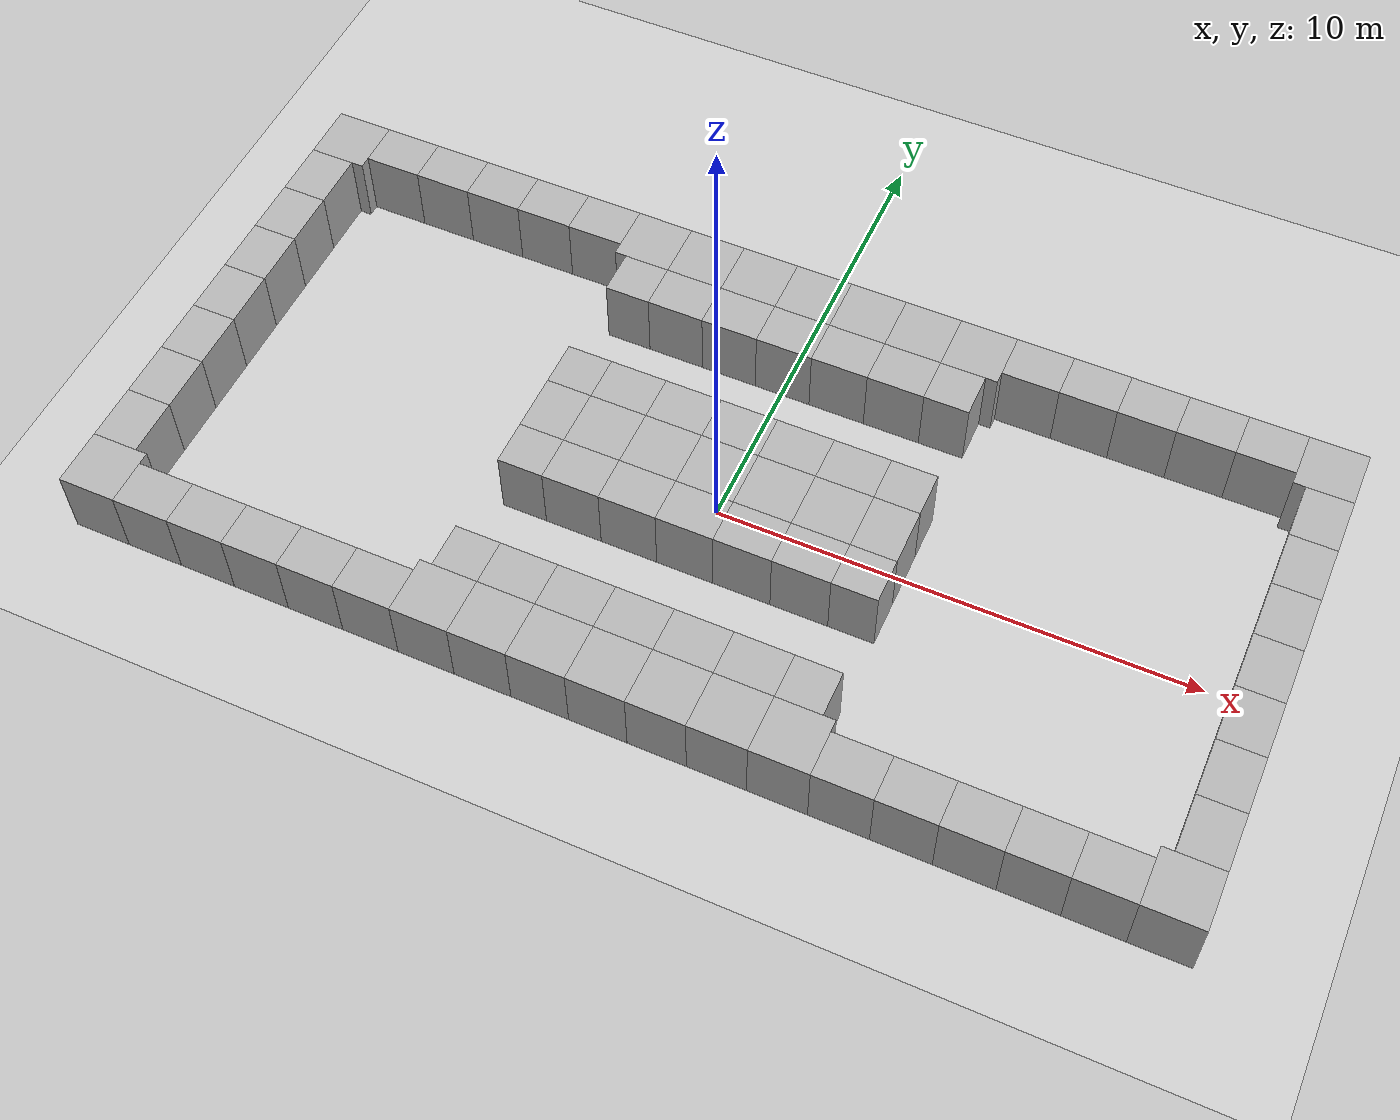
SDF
<?xml version="1.0"?>
<!-- Generated by remroc_world_generation/layouts.py (narrow_corridors). SPDX-License-Identifier: Apache-2.0 -->
<sdf version="1.6">
  <world name="narrow_corridors">
    <scene>
      <grid>false</grid>
    </scene>
    <physics name="1ms" type="ignored">
      <max_step_size>0.002</max_step_size>
      <real_time_factor>1.0</real_time_factor>
    </physics>
    <plugin filename="libignition-gazebo-physics-system.so" name="ignition::gazebo::systems::Physics"></plugin>
    <plugin filename="libignition-gazebo-sensors-system.so" name="ignition::gazebo::systems::Sensors">
      <render_engine>ogre</render_engine>
      <namespace>test</namespace>
    </plugin>
    <plugin filename="ignition-gazebo-imu-system" name="ignition::gazebo::systems::Imu"></plugin>
    <plugin filename="libignition-gazebo-user-commands-system.so" name="ignition::gazebo::systems::UserCommands"></plugin>
    <plugin filename="libignition-gazebo-scene-broadcaster-system.so" name="ignition::gazebo::systems::SceneBroadcaster"></plugin>

    <light type="directional" name="sun">
      <cast_shadows>true</cast_shadows>
      <pose>0 0 10 0 0 0</pose>
      <diffuse>0.8 0.8 0.8 1</diffuse>
      <specular>0.2 0.2 0.2 1</specular>
      <direction>-0.5 0.1 -0.9</direction>
    </light>

    <model name="ground_plane">
      <static>true</static>
      <link name="link">
        <collision name="collision"><geometry><plane><normal>0 0 1</normal><size>100 100</size></plane></geometry></collision>
        <visual name="visual"><geometry><plane><normal>0 0 1</normal><size>100 100</size></plane></geometry>
          <material><ambient>0.8 0.8 0.8 1</ambient><diffuse>0.8 0.8 0.8 1</diffuse></material></visual>
      </link>
    </model>

    <model name="narrow_corridors_walls">
      <static>true</static>
      <link name="wall_0">
        <pose>-10.8000 4.8000 0.75 0 0 0</pose>
        <collision name="collision"><geometry><box><size>1.2000 1.2000 1.5</size></box></geometry></collision>
        <visual name="visual"><geometry><box><size>1.2000 1.2000 1.5</size></box></geometry><material><ambient>0.6 0.6 0.6 1</ambient><diffuse>0.7 0.7 0.7 1</diffuse></material></visual>
      </link>
      <link name="wall_1">
        <pose>-9.6000 4.9250 0.75 0 0 0</pose>
        <collision name="collision"><geometry><box><size>1.2000 0.9500 1.5</size></box></geometry></collision>
        <visual name="visual"><geometry><box><size>1.2000 0.9500 1.5</size></box></geometry><material><ambient>0.6 0.6 0.6 1</ambient><diffuse>0.7 0.7 0.7 1</diffuse></material></visual>
      </link>
      <link name="wall_2">
        <pose>-8.4000 4.9250 0.75 0 0 0</pose>
        <collision name="collision"><geometry><box><size>1.2000 0.9500 1.5</size></box></geometry></collision>
        <visual name="visual"><geometry><box><size>1.2000 0.9500 1.5</size></box></geometry><material><ambient>0.6 0.6 0.6 1</ambient><diffuse>0.7 0.7 0.7 1</diffuse></material></visual>
      </link>
      <link name="wall_3">
        <pose>-7.2000 4.9250 0.75 0 0 0</pose>
        <collision name="collision"><geometry><box><size>1.2000 0.9500 1.5</size></box></geometry></collision>
        <visual name="visual"><geometry><box><size>1.2000 0.9500 1.5</size></box></geometry><material><ambient>0.6 0.6 0.6 1</ambient><diffuse>0.7 0.7 0.7 1</diffuse></material></visual>
      </link>
      <link name="wall_4">
        <pose>-6.0000 4.9250 0.75 0 0 0</pose>
        <collision name="collision"><geometry><box><size>1.2000 0.9500 1.5</size></box></geometry></collision>
        <visual name="visual"><geometry><box><size>1.2000 0.9500 1.5</size></box></geometry><material><ambient>0.6 0.6 0.6 1</ambient><diffuse>0.7 0.7 0.7 1</diffuse></material></visual>
      </link>
      <link name="wall_5">
        <pose>-4.8000 4.9250 0.75 0 0 0</pose>
        <collision name="collision"><geometry><box><size>1.2000 0.9500 1.5</size></box></geometry></collision>
        <visual name="visual"><geometry><box><size>1.2000 0.9500 1.5</size></box></geometry><material><ambient>0.6 0.6 0.6 1</ambient><diffuse>0.7 0.7 0.7 1</diffuse></material></visual>
      </link>
      <link name="wall_6">
        <pose>-3.6000 4.8000 0.75 0 0 0</pose>
        <collision name="collision"><geometry><box><size>1.2000 1.2000 1.5</size></box></geometry></collision>
        <visual name="visual"><geometry><box><size>1.2000 1.2000 1.5</size></box></geometry><material><ambient>0.6 0.6 0.6 1</ambient><diffuse>0.7 0.7 0.7 1</diffuse></material></visual>
      </link>
      <link name="wall_7">
        <pose>-2.4000 4.8000 0.75 0 0 0</pose>
        <collision name="collision"><geometry><box><size>1.2000 1.2000 1.5</size></box></geometry></collision>
        <visual name="visual"><geometry><box><size>1.2000 1.2000 1.5</size></box></geometry><material><ambient>0.6 0.6 0.6 1</ambient><diffuse>0.7 0.7 0.7 1</diffuse></material></visual>
      </link>
      <link name="wall_8">
        <pose>-1.2000 4.8000 0.75 0 0 0</pose>
        <collision name="collision"><geometry><box><size>1.2000 1.2000 1.5</size></box></geometry></collision>
        <visual name="visual"><geometry><box><size>1.2000 1.2000 1.5</size></box></geometry><material><ambient>0.6 0.6 0.6 1</ambient><diffuse>0.7 0.7 0.7 1</diffuse></material></visual>
      </link>
      <link name="wall_9">
        <pose>0.0000 4.8000 0.75 0 0 0</pose>
        <collision name="collision"><geometry><box><size>1.2000 1.2000 1.5</size></box></geometry></collision>
        <visual name="visual"><geometry><box><size>1.2000 1.2000 1.5</size></box></geometry><material><ambient>0.6 0.6 0.6 1</ambient><diffuse>0.7 0.7 0.7 1</diffuse></material></visual>
      </link>
      <link name="wall_10">
        <pose>1.2000 4.8000 0.75 0 0 0</pose>
        <collision name="collision"><geometry><box><size>1.2000 1.2000 1.5</size></box></geometry></collision>
        <visual name="visual"><geometry><box><size>1.2000 1.2000 1.5</size></box></geometry><material><ambient>0.6 0.6 0.6 1</ambient><diffuse>0.7 0.7 0.7 1</diffuse></material></visual>
      </link>
      <link name="wall_11">
        <pose>2.4000 4.8000 0.75 0 0 0</pose>
        <collision name="collision"><geometry><box><size>1.2000 1.2000 1.5</size></box></geometry></collision>
        <visual name="visual"><geometry><box><size>1.2000 1.2000 1.5</size></box></geometry><material><ambient>0.6 0.6 0.6 1</ambient><diffuse>0.7 0.7 0.7 1</diffuse></material></visual>
      </link>
      <link name="wall_12">
        <pose>3.6000 4.8000 0.75 0 0 0</pose>
        <collision name="collision"><geometry><box><size>1.2000 1.2000 1.5</size></box></geometry></collision>
        <visual name="visual"><geometry><box><size>1.2000 1.2000 1.5</size></box></geometry><material><ambient>0.6 0.6 0.6 1</ambient><diffuse>0.7 0.7 0.7 1</diffuse></material></visual>
      </link>
      <link name="wall_13">
        <pose>4.8000 4.9250 0.75 0 0 0</pose>
        <collision name="collision"><geometry><box><size>1.2000 0.9500 1.5</size></box></geometry></collision>
        <visual name="visual"><geometry><box><size>1.2000 0.9500 1.5</size></box></geometry><material><ambient>0.6 0.6 0.6 1</ambient><diffuse>0.7 0.7 0.7 1</diffuse></material></visual>
      </link>
      <link name="wall_14">
        <pose>6.0000 4.9250 0.75 0 0 0</pose>
        <collision name="collision"><geometry><box><size>1.2000 0.9500 1.5</size></box></geometry></collision>
        <visual name="visual"><geometry><box><size>1.2000 0.9500 1.5</size></box></geometry><material><ambient>0.6 0.6 0.6 1</ambient><diffuse>0.7 0.7 0.7 1</diffuse></material></visual>
      </link>
      <link name="wall_15">
        <pose>7.2000 4.9250 0.75 0 0 0</pose>
        <collision name="collision"><geometry><box><size>1.2000 0.9500 1.5</size></box></geometry></collision>
        <visual name="visual"><geometry><box><size>1.2000 0.9500 1.5</size></box></geometry><material><ambient>0.6 0.6 0.6 1</ambient><diffuse>0.7 0.7 0.7 1</diffuse></material></visual>
      </link>
      <link name="wall_16">
        <pose>8.4000 4.9250 0.75 0 0 0</pose>
        <collision name="collision"><geometry><box><size>1.2000 0.9500 1.5</size></box></geometry></collision>
        <visual name="visual"><geometry><box><size>1.2000 0.9500 1.5</size></box></geometry><material><ambient>0.6 0.6 0.6 1</ambient><diffuse>0.7 0.7 0.7 1</diffuse></material></visual>
      </link>
      <link name="wall_17">
        <pose>9.6000 4.9250 0.75 0 0 0</pose>
        <collision name="collision"><geometry><box><size>1.2000 0.9500 1.5</size></box></geometry></collision>
        <visual name="visual"><geometry><box><size>1.2000 0.9500 1.5</size></box></geometry><material><ambient>0.6 0.6 0.6 1</ambient><diffuse>0.7 0.7 0.7 1</diffuse></material></visual>
      </link>
      <link name="wall_18">
        <pose>10.8000 4.8000 0.75 0 0 0</pose>
        <collision name="collision"><geometry><box><size>1.2000 1.2000 1.5</size></box></geometry></collision>
        <visual name="visual"><geometry><box><size>1.2000 1.2000 1.5</size></box></geometry><material><ambient>0.6 0.6 0.6 1</ambient><diffuse>0.7 0.7 0.7 1</diffuse></material></visual>
      </link>
      <link name="wall_19">
        <pose>-10.9250 3.6000 0.75 0 0 0</pose>
        <collision name="collision"><geometry><box><size>0.9500 1.2000 1.5</size></box></geometry></collision>
        <visual name="visual"><geometry><box><size>0.9500 1.2000 1.5</size></box></geometry><material><ambient>0.6 0.6 0.6 1</ambient><diffuse>0.7 0.7 0.7 1</diffuse></material></visual>
      </link>
      <link name="wall_20">
        <pose>-3.4750 3.7250 0.75 0 0 0</pose>
        <collision name="collision"><geometry><box><size>0.9500 0.9500 1.5</size></box></geometry></collision>
        <visual name="visual"><geometry><box><size>0.9500 0.9500 1.5</size></box></geometry><material><ambient>0.6 0.6 0.6 1</ambient><diffuse>0.7 0.7 0.7 1</diffuse></material></visual>
      </link>
      <link name="wall_21">
        <pose>-2.4000 3.7250 0.75 0 0 0</pose>
        <collision name="collision"><geometry><box><size>1.2000 0.9500 1.5</size></box></geometry></collision>
        <visual name="visual"><geometry><box><size>1.2000 0.9500 1.5</size></box></geometry><material><ambient>0.6 0.6 0.6 1</ambient><diffuse>0.7 0.7 0.7 1</diffuse></material></visual>
      </link>
      <link name="wall_22">
        <pose>-1.2000 3.7250 0.75 0 0 0</pose>
        <collision name="collision"><geometry><box><size>1.2000 0.9500 1.5</size></box></geometry></collision>
        <visual name="visual"><geometry><box><size>1.2000 0.9500 1.5</size></box></geometry><material><ambient>0.6 0.6 0.6 1</ambient><diffuse>0.7 0.7 0.7 1</diffuse></material></visual>
      </link>
      <link name="wall_23">
        <pose>0.0000 3.7250 0.75 0 0 0</pose>
        <collision name="collision"><geometry><box><size>1.2000 0.9500 1.5</size></box></geometry></collision>
        <visual name="visual"><geometry><box><size>1.2000 0.9500 1.5</size></box></geometry><material><ambient>0.6 0.6 0.6 1</ambient><diffuse>0.7 0.7 0.7 1</diffuse></material></visual>
      </link>
      <link name="wall_24">
        <pose>1.2000 3.7250 0.75 0 0 0</pose>
        <collision name="collision"><geometry><box><size>1.2000 0.9500 1.5</size></box></geometry></collision>
        <visual name="visual"><geometry><box><size>1.2000 0.9500 1.5</size></box></geometry><material><ambient>0.6 0.6 0.6 1</ambient><diffuse>0.7 0.7 0.7 1</diffuse></material></visual>
      </link>
      <link name="wall_25">
        <pose>2.4000 3.7250 0.75 0 0 0</pose>
        <collision name="collision"><geometry><box><size>1.2000 0.9500 1.5</size></box></geometry></collision>
        <visual name="visual"><geometry><box><size>1.2000 0.9500 1.5</size></box></geometry><material><ambient>0.6 0.6 0.6 1</ambient><diffuse>0.7 0.7 0.7 1</diffuse></material></visual>
      </link>
      <link name="wall_26">
        <pose>3.4750 3.7250 0.75 0 0 0</pose>
        <collision name="collision"><geometry><box><size>0.9500 0.9500 1.5</size></box></geometry></collision>
        <visual name="visual"><geometry><box><size>0.9500 0.9500 1.5</size></box></geometry><material><ambient>0.6 0.6 0.6 1</ambient><diffuse>0.7 0.7 0.7 1</diffuse></material></visual>
      </link>
      <link name="wall_27">
        <pose>10.9250 3.6000 0.75 0 0 0</pose>
        <collision name="collision"><geometry><box><size>0.9500 1.2000 1.5</size></box></geometry></collision>
        <visual name="visual"><geometry><box><size>0.9500 1.2000 1.5</size></box></geometry><material><ambient>0.6 0.6 0.6 1</ambient><diffuse>0.7 0.7 0.7 1</diffuse></material></visual>
      </link>
      <link name="wall_28">
        <pose>-10.9250 2.4000 0.75 0 0 0</pose>
        <collision name="collision"><geometry><box><size>0.9500 1.2000 1.5</size></box></geometry></collision>
        <visual name="visual"><geometry><box><size>0.9500 1.2000 1.5</size></box></geometry><material><ambient>0.6 0.6 0.6 1</ambient><diffuse>0.7 0.7 0.7 1</diffuse></material></visual>
      </link>
      <link name="wall_29">
        <pose>10.9250 2.4000 0.75 0 0 0</pose>
        <collision name="collision"><geometry><box><size>0.9500 1.2000 1.5</size></box></geometry></collision>
        <visual name="visual"><geometry><box><size>0.9500 1.2000 1.5</size></box></geometry><material><ambient>0.6 0.6 0.6 1</ambient><diffuse>0.7 0.7 0.7 1</diffuse></material></visual>
      </link>
      <link name="wall_30">
        <pose>-10.9250 1.2000 0.75 0 0 0</pose>
        <collision name="collision"><geometry><box><size>0.9500 1.2000 1.5</size></box></geometry></collision>
        <visual name="visual"><geometry><box><size>0.9500 1.2000 1.5</size></box></geometry><material><ambient>0.6 0.6 0.6 1</ambient><diffuse>0.7 0.7 0.7 1</diffuse></material></visual>
      </link>
      <link name="wall_31">
        <pose>-3.4750 1.0750 0.75 0 0 0</pose>
        <collision name="collision"><geometry><box><size>0.9500 0.9500 1.5</size></box></geometry></collision>
        <visual name="visual"><geometry><box><size>0.9500 0.9500 1.5</size></box></geometry><material><ambient>0.6 0.6 0.6 1</ambient><diffuse>0.7 0.7 0.7 1</diffuse></material></visual>
      </link>
      <link name="wall_32">
        <pose>-2.4000 1.0750 0.75 0 0 0</pose>
        <collision name="collision"><geometry><box><size>1.2000 0.9500 1.5</size></box></geometry></collision>
        <visual name="visual"><geometry><box><size>1.2000 0.9500 1.5</size></box></geometry><material><ambient>0.6 0.6 0.6 1</ambient><diffuse>0.7 0.7 0.7 1</diffuse></material></visual>
      </link>
      <link name="wall_33">
        <pose>-1.2000 1.0750 0.75 0 0 0</pose>
        <collision name="collision"><geometry><box><size>1.2000 0.9500 1.5</size></box></geometry></collision>
        <visual name="visual"><geometry><box><size>1.2000 0.9500 1.5</size></box></geometry><material><ambient>0.6 0.6 0.6 1</ambient><diffuse>0.7 0.7 0.7 1</diffuse></material></visual>
      </link>
      <link name="wall_34">
        <pose>0.0000 1.0750 0.75 0 0 0</pose>
        <collision name="collision"><geometry><box><size>1.2000 0.9500 1.5</size></box></geometry></collision>
        <visual name="visual"><geometry><box><size>1.2000 0.9500 1.5</size></box></geometry><material><ambient>0.6 0.6 0.6 1</ambient><diffuse>0.7 0.7 0.7 1</diffuse></material></visual>
      </link>
      <link name="wall_35">
        <pose>1.2000 1.0750 0.75 0 0 0</pose>
        <collision name="collision"><geometry><box><size>1.2000 0.9500 1.5</size></box></geometry></collision>
        <visual name="visual"><geometry><box><size>1.2000 0.9500 1.5</size></box></geometry><material><ambient>0.6 0.6 0.6 1</ambient><diffuse>0.7 0.7 0.7 1</diffuse></material></visual>
      </link>
      <link name="wall_36">
        <pose>2.4000 1.0750 0.75 0 0 0</pose>
        <collision name="collision"><geometry><box><size>1.2000 0.9500 1.5</size></box></geometry></collision>
        <visual name="visual"><geometry><box><size>1.2000 0.9500 1.5</size></box></geometry><material><ambient>0.6 0.6 0.6 1</ambient><diffuse>0.7 0.7 0.7 1</diffuse></material></visual>
      </link>
      <link name="wall_37">
        <pose>3.4750 1.0750 0.75 0 0 0</pose>
        <collision name="collision"><geometry><box><size>0.9500 0.9500 1.5</size></box></geometry></collision>
        <visual name="visual"><geometry><box><size>0.9500 0.9500 1.5</size></box></geometry><material><ambient>0.6 0.6 0.6 1</ambient><diffuse>0.7 0.7 0.7 1</diffuse></material></visual>
      </link>
      <link name="wall_38">
        <pose>10.9250 1.2000 0.75 0 0 0</pose>
        <collision name="collision"><geometry><box><size>0.9500 1.2000 1.5</size></box></geometry></collision>
        <visual name="visual"><geometry><box><size>0.9500 1.2000 1.5</size></box></geometry><material><ambient>0.6 0.6 0.6 1</ambient><diffuse>0.7 0.7 0.7 1</diffuse></material></visual>
      </link>
      <link name="wall_39">
        <pose>-10.9250 0.0000 0.75 0 0 0</pose>
        <collision name="collision"><geometry><box><size>0.9500 1.2000 1.5</size></box></geometry></collision>
        <visual name="visual"><geometry><box><size>0.9500 1.2000 1.5</size></box></geometry><material><ambient>0.6 0.6 0.6 1</ambient><diffuse>0.7 0.7 0.7 1</diffuse></material></visual>
      </link>
      <link name="wall_40">
        <pose>-3.4750 0.0000 0.75 0 0 0</pose>
        <collision name="collision"><geometry><box><size>0.9500 1.2000 1.5</size></box></geometry></collision>
        <visual name="visual"><geometry><box><size>0.9500 1.2000 1.5</size></box></geometry><material><ambient>0.6 0.6 0.6 1</ambient><diffuse>0.7 0.7 0.7 1</diffuse></material></visual>
      </link>
      <link name="wall_41">
        <pose>-2.4000 0.0000 0.75 0 0 0</pose>
        <collision name="collision"><geometry><box><size>1.2000 1.2000 1.5</size></box></geometry></collision>
        <visual name="visual"><geometry><box><size>1.2000 1.2000 1.5</size></box></geometry><material><ambient>0.6 0.6 0.6 1</ambient><diffuse>0.7 0.7 0.7 1</diffuse></material></visual>
      </link>
      <link name="wall_42">
        <pose>-1.2000 0.0000 0.75 0 0 0</pose>
        <collision name="collision"><geometry><box><size>1.2000 1.2000 1.5</size></box></geometry></collision>
        <visual name="visual"><geometry><box><size>1.2000 1.2000 1.5</size></box></geometry><material><ambient>0.6 0.6 0.6 1</ambient><diffuse>0.7 0.7 0.7 1</diffuse></material></visual>
      </link>
      <link name="wall_43">
        <pose>0.0000 0.0000 0.75 0 0 0</pose>
        <collision name="collision"><geometry><box><size>1.2000 1.2000 1.5</size></box></geometry></collision>
        <visual name="visual"><geometry><box><size>1.2000 1.2000 1.5</size></box></geometry><material><ambient>0.6 0.6 0.6 1</ambient><diffuse>0.7 0.7 0.7 1</diffuse></material></visual>
      </link>
      <link name="wall_44">
        <pose>1.2000 0.0000 0.75 0 0 0</pose>
        <collision name="collision"><geometry><box><size>1.2000 1.2000 1.5</size></box></geometry></collision>
        <visual name="visual"><geometry><box><size>1.2000 1.2000 1.5</size></box></geometry><material><ambient>0.6 0.6 0.6 1</ambient><diffuse>0.7 0.7 0.7 1</diffuse></material></visual>
      </link>
      <link name="wall_45">
        <pose>2.4000 0.0000 0.75 0 0 0</pose>
        <collision name="collision"><geometry><box><size>1.2000 1.2000 1.5</size></box></geometry></collision>
        <visual name="visual"><geometry><box><size>1.2000 1.2000 1.5</size></box></geometry><material><ambient>0.6 0.6 0.6 1</ambient><diffuse>0.7 0.7 0.7 1</diffuse></material></visual>
      </link>
      <link name="wall_46">
        <pose>3.4750 0.0000 0.75 0 0 0</pose>
        <collision name="collision"><geometry><box><size>0.9500 1.2000 1.5</size></box></geometry></collision>
        <visual name="visual"><geometry><box><size>0.9500 1.2000 1.5</size></box></geometry><material><ambient>0.6 0.6 0.6 1</ambient><diffuse>0.7 0.7 0.7 1</diffuse></material></visual>
      </link>
      <link name="wall_47">
        <pose>10.9250 0.0000 0.75 0 0 0</pose>
        <collision name="collision"><geometry><box><size>0.9500 1.2000 1.5</size></box></geometry></collision>
        <visual name="visual"><geometry><box><size>0.9500 1.2000 1.5</size></box></geometry><material><ambient>0.6 0.6 0.6 1</ambient><diffuse>0.7 0.7 0.7 1</diffuse></material></visual>
      </link>
      <link name="wall_48">
        <pose>-10.9250 -1.2000 0.75 0 0 0</pose>
        <collision name="collision"><geometry><box><size>0.9500 1.2000 1.5</size></box></geometry></collision>
        <visual name="visual"><geometry><box><size>0.9500 1.2000 1.5</size></box></geometry><material><ambient>0.6 0.6 0.6 1</ambient><diffuse>0.7 0.7 0.7 1</diffuse></material></visual>
      </link>
      <link name="wall_49">
        <pose>-3.4750 -1.0750 0.75 0 0 0</pose>
        <collision name="collision"><geometry><box><size>0.9500 0.9500 1.5</size></box></geometry></collision>
        <visual name="visual"><geometry><box><size>0.9500 0.9500 1.5</size></box></geometry><material><ambient>0.6 0.6 0.6 1</ambient><diffuse>0.7 0.7 0.7 1</diffuse></material></visual>
      </link>
      <link name="wall_50">
        <pose>-2.4000 -1.0750 0.75 0 0 0</pose>
        <collision name="collision"><geometry><box><size>1.2000 0.9500 1.5</size></box></geometry></collision>
        <visual name="visual"><geometry><box><size>1.2000 0.9500 1.5</size></box></geometry><material><ambient>0.6 0.6 0.6 1</ambient><diffuse>0.7 0.7 0.7 1</diffuse></material></visual>
      </link>
      <link name="wall_51">
        <pose>-1.2000 -1.0750 0.75 0 0 0</pose>
        <collision name="collision"><geometry><box><size>1.2000 0.9500 1.5</size></box></geometry></collision>
        <visual name="visual"><geometry><box><size>1.2000 0.9500 1.5</size></box></geometry><material><ambient>0.6 0.6 0.6 1</ambient><diffuse>0.7 0.7 0.7 1</diffuse></material></visual>
      </link>
      <link name="wall_52">
        <pose>0.0000 -1.0750 0.75 0 0 0</pose>
        <collision name="collision"><geometry><box><size>1.2000 0.9500 1.5</size></box></geometry></collision>
        <visual name="visual"><geometry><box><size>1.2000 0.9500 1.5</size></box></geometry><material><ambient>0.6 0.6 0.6 1</ambient><diffuse>0.7 0.7 0.7 1</diffuse></material></visual>
      </link>
      <link name="wall_53">
        <pose>1.2000 -1.0750 0.75 0 0 0</pose>
        <collision name="collision"><geometry><box><size>1.2000 0.9500 1.5</size></box></geometry></collision>
        <visual name="visual"><geometry><box><size>1.2000 0.9500 1.5</size></box></geometry><material><ambient>0.6 0.6 0.6 1</ambient><diffuse>0.7 0.7 0.7 1</diffuse></material></visual>
      </link>
      <link name="wall_54">
        <pose>2.4000 -1.0750 0.75 0 0 0</pose>
        <collision name="collision"><geometry><box><size>1.2000 0.9500 1.5</size></box></geometry></collision>
        <visual name="visual"><geometry><box><size>1.2000 0.9500 1.5</size></box></geometry><material><ambient>0.6 0.6 0.6 1</ambient><diffuse>0.7 0.7 0.7 1</diffuse></material></visual>
      </link>
      <link name="wall_55">
        <pose>3.4750 -1.0750 0.75 0 0 0</pose>
        <collision name="collision"><geometry><box><size>0.9500 0.9500 1.5</size></box></geometry></collision>
        <visual name="visual"><geometry><box><size>0.9500 0.9500 1.5</size></box></geometry><material><ambient>0.6 0.6 0.6 1</ambient><diffuse>0.7 0.7 0.7 1</diffuse></material></visual>
      </link>
      <link name="wall_56">
        <pose>10.9250 -1.2000 0.75 0 0 0</pose>
        <collision name="collision"><geometry><box><size>0.9500 1.2000 1.5</size></box></geometry></collision>
        <visual name="visual"><geometry><box><size>0.9500 1.2000 1.5</size></box></geometry><material><ambient>0.6 0.6 0.6 1</ambient><diffuse>0.7 0.7 0.7 1</diffuse></material></visual>
      </link>
      <link name="wall_57">
        <pose>-10.9250 -2.4000 0.75 0 0 0</pose>
        <collision name="collision"><geometry><box><size>0.9500 1.2000 1.5</size></box></geometry></collision>
        <visual name="visual"><geometry><box><size>0.9500 1.2000 1.5</size></box></geometry><material><ambient>0.6 0.6 0.6 1</ambient><diffuse>0.7 0.7 0.7 1</diffuse></material></visual>
      </link>
      <link name="wall_58">
        <pose>10.9250 -2.4000 0.75 0 0 0</pose>
        <collision name="collision"><geometry><box><size>0.9500 1.2000 1.5</size></box></geometry></collision>
        <visual name="visual"><geometry><box><size>0.9500 1.2000 1.5</size></box></geometry><material><ambient>0.6 0.6 0.6 1</ambient><diffuse>0.7 0.7 0.7 1</diffuse></material></visual>
      </link>
      <link name="wall_59">
        <pose>-10.9250 -3.6000 0.75 0 0 0</pose>
        <collision name="collision"><geometry><box><size>0.9500 1.2000 1.5</size></box></geometry></collision>
        <visual name="visual"><geometry><box><size>0.9500 1.2000 1.5</size></box></geometry><material><ambient>0.6 0.6 0.6 1</ambient><diffuse>0.7 0.7 0.7 1</diffuse></material></visual>
      </link>
      <link name="wall_60">
        <pose>-3.4750 -3.7250 0.75 0 0 0</pose>
        <collision name="collision"><geometry><box><size>0.9500 0.9500 1.5</size></box></geometry></collision>
        <visual name="visual"><geometry><box><size>0.9500 0.9500 1.5</size></box></geometry><material><ambient>0.6 0.6 0.6 1</ambient><diffuse>0.7 0.7 0.7 1</diffuse></material></visual>
      </link>
      <link name="wall_61">
        <pose>-2.4000 -3.7250 0.75 0 0 0</pose>
        <collision name="collision"><geometry><box><size>1.2000 0.9500 1.5</size></box></geometry></collision>
        <visual name="visual"><geometry><box><size>1.2000 0.9500 1.5</size></box></geometry><material><ambient>0.6 0.6 0.6 1</ambient><diffuse>0.7 0.7 0.7 1</diffuse></material></visual>
      </link>
      <link name="wall_62">
        <pose>-1.2000 -3.7250 0.75 0 0 0</pose>
        <collision name="collision"><geometry><box><size>1.2000 0.9500 1.5</size></box></geometry></collision>
        <visual name="visual"><geometry><box><size>1.2000 0.9500 1.5</size></box></geometry><material><ambient>0.6 0.6 0.6 1</ambient><diffuse>0.7 0.7 0.7 1</diffuse></material></visual>
      </link>
      <link name="wall_63">
        <pose>0.0000 -3.7250 0.75 0 0 0</pose>
        <collision name="collision"><geometry><box><size>1.2000 0.9500 1.5</size></box></geometry></collision>
        <visual name="visual"><geometry><box><size>1.2000 0.9500 1.5</size></box></geometry><material><ambient>0.6 0.6 0.6 1</ambient><diffuse>0.7 0.7 0.7 1</diffuse></material></visual>
      </link>
      <link name="wall_64">
        <pose>1.2000 -3.7250 0.75 0 0 0</pose>
        <collision name="collision"><geometry><box><size>1.2000 0.9500 1.5</size></box></geometry></collision>
        <visual name="visual"><geometry><box><size>1.2000 0.9500 1.5</size></box></geometry><material><ambient>0.6 0.6 0.6 1</ambient><diffuse>0.7 0.7 0.7 1</diffuse></material></visual>
      </link>
      <link name="wall_65">
        <pose>2.4000 -3.7250 0.75 0 0 0</pose>
        <collision name="collision"><geometry><box><size>1.2000 0.9500 1.5</size></box></geometry></collision>
        <visual name="visual"><geometry><box><size>1.2000 0.9500 1.5</size></box></geometry><material><ambient>0.6 0.6 0.6 1</ambient><diffuse>0.7 0.7 0.7 1</diffuse></material></visual>
      </link>
      <link name="wall_66">
        <pose>3.4750 -3.7250 0.75 0 0 0</pose>
        <collision name="collision"><geometry><box><size>0.9500 0.9500 1.5</size></box></geometry></collision>
        <visual name="visual"><geometry><box><size>0.9500 0.9500 1.5</size></box></geometry><material><ambient>0.6 0.6 0.6 1</ambient><diffuse>0.7 0.7 0.7 1</diffuse></material></visual>
      </link>
      <link name="wall_67">
        <pose>10.9250 -3.6000 0.75 0 0 0</pose>
        <collision name="collision"><geometry><box><size>0.9500 1.2000 1.5</size></box></geometry></collision>
        <visual name="visual"><geometry><box><size>0.9500 1.2000 1.5</size></box></geometry><material><ambient>0.6 0.6 0.6 1</ambient><diffuse>0.7 0.7 0.7 1</diffuse></material></visual>
      </link>
      <link name="wall_68">
        <pose>-10.8000 -4.8000 0.75 0 0 0</pose>
        <collision name="collision"><geometry><box><size>1.2000 1.2000 1.5</size></box></geometry></collision>
        <visual name="visual"><geometry><box><size>1.2000 1.2000 1.5</size></box></geometry><material><ambient>0.6 0.6 0.6 1</ambient><diffuse>0.7 0.7 0.7 1</diffuse></material></visual>
      </link>
      <link name="wall_69">
        <pose>-9.6000 -4.9250 0.75 0 0 0</pose>
        <collision name="collision"><geometry><box><size>1.2000 0.9500 1.5</size></box></geometry></collision>
        <visual name="visual"><geometry><box><size>1.2000 0.9500 1.5</size></box></geometry><material><ambient>0.6 0.6 0.6 1</ambient><diffuse>0.7 0.7 0.7 1</diffuse></material></visual>
      </link>
      <link name="wall_70">
        <pose>-8.4000 -4.9250 0.75 0 0 0</pose>
        <collision name="collision"><geometry><box><size>1.2000 0.9500 1.5</size></box></geometry></collision>
        <visual name="visual"><geometry><box><size>1.2000 0.9500 1.5</size></box></geometry><material><ambient>0.6 0.6 0.6 1</ambient><diffuse>0.7 0.7 0.7 1</diffuse></material></visual>
      </link>
      <link name="wall_71">
        <pose>-7.2000 -4.9250 0.75 0 0 0</pose>
        <collision name="collision"><geometry><box><size>1.2000 0.9500 1.5</size></box></geometry></collision>
        <visual name="visual"><geometry><box><size>1.2000 0.9500 1.5</size></box></geometry><material><ambient>0.6 0.6 0.6 1</ambient><diffuse>0.7 0.7 0.7 1</diffuse></material></visual>
      </link>
      <link name="wall_72">
        <pose>-6.0000 -4.9250 0.75 0 0 0</pose>
        <collision name="collision"><geometry><box><size>1.2000 0.9500 1.5</size></box></geometry></collision>
        <visual name="visual"><geometry><box><size>1.2000 0.9500 1.5</size></box></geometry><material><ambient>0.6 0.6 0.6 1</ambient><diffuse>0.7 0.7 0.7 1</diffuse></material></visual>
      </link>
      <link name="wall_73">
        <pose>-4.8000 -4.9250 0.75 0 0 0</pose>
        <collision name="collision"><geometry><box><size>1.2000 0.9500 1.5</size></box></geometry></collision>
        <visual name="visual"><geometry><box><size>1.2000 0.9500 1.5</size></box></geometry><material><ambient>0.6 0.6 0.6 1</ambient><diffuse>0.7 0.7 0.7 1</diffuse></material></visual>
      </link>
      <link name="wall_74">
        <pose>-3.6000 -4.8000 0.75 0 0 0</pose>
        <collision name="collision"><geometry><box><size>1.2000 1.2000 1.5</size></box></geometry></collision>
        <visual name="visual"><geometry><box><size>1.2000 1.2000 1.5</size></box></geometry><material><ambient>0.6 0.6 0.6 1</ambient><diffuse>0.7 0.7 0.7 1</diffuse></material></visual>
      </link>
      <link name="wall_75">
        <pose>-2.4000 -4.8000 0.75 0 0 0</pose>
        <collision name="collision"><geometry><box><size>1.2000 1.2000 1.5</size></box></geometry></collision>
        <visual name="visual"><geometry><box><size>1.2000 1.2000 1.5</size></box></geometry><material><ambient>0.6 0.6 0.6 1</ambient><diffuse>0.7 0.7 0.7 1</diffuse></material></visual>
      </link>
      <link name="wall_76">
        <pose>-1.2000 -4.8000 0.75 0 0 0</pose>
        <collision name="collision"><geometry><box><size>1.2000 1.2000 1.5</size></box></geometry></collision>
        <visual name="visual"><geometry><box><size>1.2000 1.2000 1.5</size></box></geometry><material><ambient>0.6 0.6 0.6 1</ambient><diffuse>0.7 0.7 0.7 1</diffuse></material></visual>
      </link>
      <link name="wall_77">
        <pose>0.0000 -4.8000 0.75 0 0 0</pose>
        <collision name="collision"><geometry><box><size>1.2000 1.2000 1.5</size></box></geometry></collision>
        <visual name="visual"><geometry><box><size>1.2000 1.2000 1.5</size></box></geometry><material><ambient>0.6 0.6 0.6 1</ambient><diffuse>0.7 0.7 0.7 1</diffuse></material></visual>
      </link>
      <link name="wall_78">
        <pose>1.2000 -4.8000 0.75 0 0 0</pose>
        <collision name="collision"><geometry><box><size>1.2000 1.2000 1.5</size></box></geometry></collision>
        <visual name="visual"><geometry><box><size>1.2000 1.2000 1.5</size></box></geometry><material><ambient>0.6 0.6 0.6 1</ambient><diffuse>0.7 0.7 0.7 1</diffuse></material></visual>
      </link>
      <link name="wall_79">
        <pose>2.4000 -4.8000 0.75 0 0 0</pose>
        <collision name="collision"><geometry><box><size>1.2000 1.2000 1.5</size></box></geometry></collision>
        <visual name="visual"><geometry><box><size>1.2000 1.2000 1.5</size></box></geometry><material><ambient>0.6 0.6 0.6 1</ambient><diffuse>0.7 0.7 0.7 1</diffuse></material></visual>
      </link>
      <link name="wall_80">
        <pose>3.6000 -4.8000 0.75 0 0 0</pose>
        <collision name="collision"><geometry><box><size>1.2000 1.2000 1.5</size></box></geometry></collision>
        <visual name="visual"><geometry><box><size>1.2000 1.2000 1.5</size></box></geometry><material><ambient>0.6 0.6 0.6 1</ambient><diffuse>0.7 0.7 0.7 1</diffuse></material></visual>
      </link>
      <link name="wall_81">
        <pose>4.8000 -4.9250 0.75 0 0 0</pose>
        <collision name="collision"><geometry><box><size>1.2000 0.9500 1.5</size></box></geometry></collision>
        <visual name="visual"><geometry><box><size>1.2000 0.9500 1.5</size></box></geometry><material><ambient>0.6 0.6 0.6 1</ambient><diffuse>0.7 0.7 0.7 1</diffuse></material></visual>
      </link>
      <link name="wall_82">
        <pose>6.0000 -4.9250 0.75 0 0 0</pose>
        <collision name="collision"><geometry><box><size>1.2000 0.9500 1.5</size></box></geometry></collision>
        <visual name="visual"><geometry><box><size>1.2000 0.9500 1.5</size></box></geometry><material><ambient>0.6 0.6 0.6 1</ambient><diffuse>0.7 0.7 0.7 1</diffuse></material></visual>
      </link>
      <link name="wall_83">
        <pose>7.2000 -4.9250 0.75 0 0 0</pose>
        <collision name="collision"><geometry><box><size>1.2000 0.9500 1.5</size></box></geometry></collision>
        <visual name="visual"><geometry><box><size>1.2000 0.9500 1.5</size></box></geometry><material><ambient>0.6 0.6 0.6 1</ambient><diffuse>0.7 0.7 0.7 1</diffuse></material></visual>
      </link>
      <link name="wall_84">
        <pose>8.4000 -4.9250 0.75 0 0 0</pose>
        <collision name="collision"><geometry><box><size>1.2000 0.9500 1.5</size></box></geometry></collision>
        <visual name="visual"><geometry><box><size>1.2000 0.9500 1.5</size></box></geometry><material><ambient>0.6 0.6 0.6 1</ambient><diffuse>0.7 0.7 0.7 1</diffuse></material></visual>
      </link>
      <link name="wall_85">
        <pose>9.6000 -4.9250 0.75 0 0 0</pose>
        <collision name="collision"><geometry><box><size>1.2000 0.9500 1.5</size></box></geometry></collision>
        <visual name="visual"><geometry><box><size>1.2000 0.9500 1.5</size></box></geometry><material><ambient>0.6 0.6 0.6 1</ambient><diffuse>0.7 0.7 0.7 1</diffuse></material></visual>
      </link>
      <link name="wall_86">
        <pose>10.8000 -4.8000 0.75 0 0 0</pose>
        <collision name="collision"><geometry><box><size>1.2000 1.2000 1.5</size></box></geometry></collision>
        <visual name="visual"><geometry><box><size>1.2000 1.2000 1.5</size></box></geometry><material><ambient>0.6 0.6 0.6 1</ambient><diffuse>0.7 0.7 0.7 1</diffuse></material></visual>
      </link>
    </model>

  </world>
</sdf>
